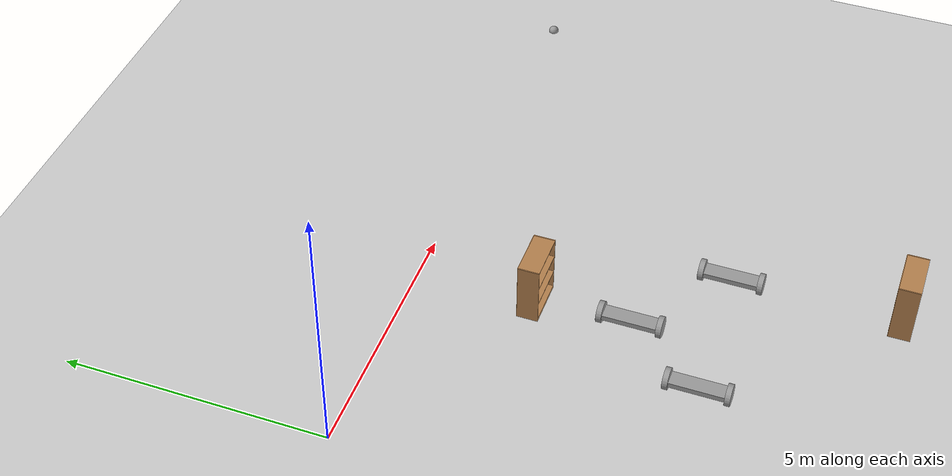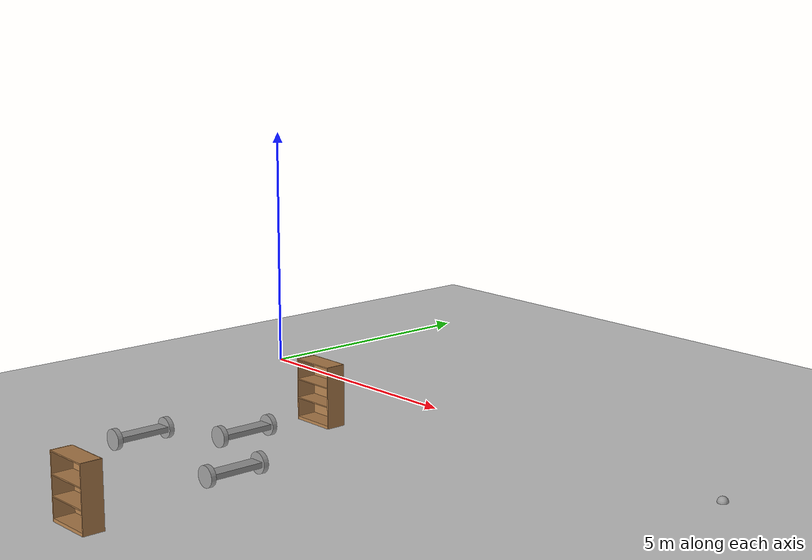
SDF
<sdf version="1.6">
 <world name="default">
  <model name="ground_plane">
   <static>1</static>
   <link name="link">
    <collision name="collision">
     <geometry><plane><normal>0 0 1</normal><size>100 100</size></plane></geometry>
     <surface><friction><ode><mu>100</mu><mu2>50</mu2></ode></friction></surface>
    </collision>
    <visual name="visual">
     <cast_shadows>0</cast_shadows>
     <geometry><plane><normal>0 0 1</normal><size>100 100</size></plane></geometry>
     <material>
      <script><uri>file://media/materials/scripts/gazebo.material</uri><name>Gazebo/Grey</name></script>
     </material>
    </visual>
   </link>
  </model>
  <model name="2wlrobot">
   <link name="link_1">
    <pose>-3e-06 2e-06 0 0 -0 0</pose>
    <inertial>
     <mass>1</mass>
     <inertia>
      <ixx>0.166667</ixx>
      <ixy>0</ixy>
      <ixz>0</ixz>
      <iyy>0.166667</iyy>
      <iyz>0</iyz>
      <izz>0.166667</izz>
     </inertia>
    </inertial>
    <visual name="visual">
     <geometry><box><size>0.3 1 0.1</size></box></geometry>
     <material>
      <lighting>1</lighting>
      <script><uri>file://media/materials/scripts/gazebo.material</uri><name>Gazebo/Grey</name></script>
      <ambient>0.3 0.3 0.3 1</ambient>
      <diffuse>0.7 0.7 0.7 1</diffuse>
      <specular>0.01 0.01 0.01 1</specular>
      <emissive>0 0 0 1</emissive>
      <shader type="vertex"><normal_map>__default__</normal_map></shader>
     </material>
    </visual>
    <collision name="collision">
     <geometry><box><size>0.3 1 0.1</size></box></geometry>
     <surface>
      <friction>
       <ode><mu>1</mu><mu2>1</mu2><fdir1>0 0 0</fdir1><slip1>0</slip1><slip2>0</slip2></ode>
       <torsional>
        <coefficient>1</coefficient>
        <patch_radius>0</patch_radius>
        <surface_radius>0</surface_radius>
        <use_patch_radius>1</use_patch_radius>
        <ode><slip>0</slip></ode>
       </torsional>
      </friction>
      <bounce><restitution_coefficient>0</restitution_coefficient><threshold>1e+06</threshold></bounce>
      <contact>
       <collide_without_contact>0</collide_without_contact>
       <collide_without_contact_bitmask>1</collide_without_contact_bitmask>
       <collide_bitmask>1</collide_bitmask>
       <ode>
        <soft_cfm>0</soft_cfm>
        <soft_erp>0.2</soft_erp>
        <kp>1e+13</kp>
        <kd>1</kd>
        <max_vel>0.01</max_vel>
        <min_depth>0</min_depth>
       </ode>
       <bullet>
        <split_impulse>1</split_impulse>
        <split_impulse_penetration_threshold>-0.01</split_impulse_penetration_threshold>
        <soft_cfm>0</soft_cfm>
        <soft_erp>0.2</soft_erp>
        <kp>1e+13</kp>
        <kd>1</kd>
       </bullet>
      </contact>
     </surface>
    </collision>
   </link>
   <link name="link_2">
    <pose>-3e-06 -0.550157 0 1.57 -0 0</pose>
    <inertial>
     <mass>1</mass>
     <inertia><ixx>0.145833</ixx><ixy>0</ixy><ixz>0</ixz><iyy>0.145833</iyy><iyz>0</iyz><izz>0.125</izz></inertia>
     <pose>0 0 0.2 1.57 -0 0</pose>
    </inertial>
    <visual name="visual">
     <geometry><cylinder><radius>0.2</radius><length>0.1</length></cylinder></geometry>
     <material>
      <lighting>1</lighting>
      <script><uri>file://media/materials/scripts/gazebo.material</uri><name>Gazebo/Grey</name></script>
      <ambient>0.3 0.3 0.3 1</ambient>
      <diffuse>0.7 0.7 0.7 1</diffuse>
      <specular>0.01 0.01 0.01 1</specular>
      <emissive>0 0 0 1</emissive>
      <shader type="vertex"><normal_map>__default__</normal_map></shader>
     </material>
    </visual>
    <collision name="collision">
     <geometry><cylinder><radius>0.2</radius><length>0.1</length></cylinder></geometry>
     <surface>
      <friction>
       <ode><mu>1</mu><mu2>1</mu2><fdir1>0 0 0</fdir1><slip1>0</slip1><slip2>0</slip2></ode>
       <torsional>
        <coefficient>1</coefficient>
        <patch_radius>0</patch_radius>
        <surface_radius>0</surface_radius>
        <use_patch_radius>1</use_patch_radius>
        <ode><slip>0</slip></ode>
       </torsional>
      </friction>
      <bounce><restitution_coefficient>0</restitution_coefficient><threshold>1e+06</threshold></bounce>
      <contact>
       <collide_without_contact>0</collide_without_contact>
       <collide_without_contact_bitmask>1</collide_without_contact_bitmask>
       <collide_bitmask>1</collide_bitmask>
       <ode>
        <soft_cfm>0</soft_cfm>
        <soft_erp>0.2</soft_erp>
        <kp>1e+13</kp>
        <kd>1</kd>
        <max_vel>0.01</max_vel>
        <min_depth>0</min_depth>
       </ode>
       <bullet>
        <split_impulse>1</split_impulse>
        <split_impulse_penetration_threshold>-0.01</split_impulse_penetration_threshold>
        <soft_cfm>0</soft_cfm>
        <soft_erp>0.2</soft_erp>
        <kp>1e+13</kp>
        <kd>1</kd>
       </bullet>
      </contact>
     </surface>
    </collision>
   </link>
   <link name="link_2_clone">
    <pose>-3e-06 0.550162 0 1.57 -0 0</pose>
    <inertial>
     <mass>1</mass>
     <inertia><ixx>0.145833</ixx><ixy>0</ixy><ixz>0</ixz><iyy>0.145833</iyy><iyz>0</iyz><izz>0.125</izz></inertia>
     <pose>0 0 0.2 1.57 -0 0</pose>
    </inertial>
    <visual name="visual">
     <geometry><cylinder><radius>0.2</radius><length>0.1</length></cylinder></geometry>
     <material>
      <lighting>1</lighting>
      <script><uri>file://media/materials/scripts/gazebo.material</uri><name>Gazebo/Grey</name></script>
      <ambient>0.3 0.3 0.3 1</ambient>
      <diffuse>0.7 0.7 0.7 1</diffuse>
      <specular>0.01 0.01 0.01 1</specular>
      <emissive>0 0 0 1</emissive>
      <shader type="vertex"><normal_map>__default__</normal_map></shader>
     </material>
    </visual>
    <collision name="collision">
     <geometry><cylinder><radius>0.2</radius><length>0.1</length></cylinder></geometry>
     <surface>
      <friction>
       <ode><mu>1</mu><mu2>1</mu2><fdir1>0 0 0</fdir1><slip1>0</slip1><slip2>0</slip2></ode>
       <torsional>
        <coefficient>1</coefficient>
        <patch_radius>0</patch_radius>
        <surface_radius>0</surface_radius>
        <use_patch_radius>1</use_patch_radius>
        <ode><slip>0</slip></ode>
       </torsional>
      </friction>
      <bounce><restitution_coefficient>0</restitution_coefficient><threshold>1e+06</threshold></bounce>
      <contact>
       <collide_without_contact>0</collide_without_contact>
       <collide_without_contact_bitmask>1</collide_without_contact_bitmask>
       <collide_bitmask>1</collide_bitmask>
       <ode>
        <soft_cfm>0</soft_cfm>
        <soft_erp>0.2</soft_erp>
        <kp>1e+13</kp>
        <kd>1</kd>
        <max_vel>0.01</max_vel>
        <min_depth>0</min_depth>
       </ode>
       <bullet>
        <split_impulse>1</split_impulse>
        <split_impulse_penetration_threshold>-0.01</split_impulse_penetration_threshold>
        <soft_cfm>0</soft_cfm>
        <soft_erp>0.2</soft_erp>
        <kp>1e+13</kp>
        <kd>1</kd>
       </bullet>
      </contact>
     </surface>
    </collision>
   </link>
   <joint name="link_1_JOINT_0" type="revolute">
    <parent>link_1</parent>
    <child>link_2</child>
    <axis>
     <xyz>0 0 1</xyz>
     <use_parent_model_frame>0</use_parent_model_frame>
     <limit>
      <lower>-1.79769e+308</lower>
      <upper>1.79769e+308</upper>
      <effort>-1</effort>
      <velocity>-1</velocity>
     </limit>
     <dynamics>
      <spring_reference>0</spring_reference>
      <spring_stiffness>0</spring_stiffness>
      <damping>0</damping>
     </dynamics>
    </axis>
    <physics>
     <ode><limit><cfm>0</cfm><erp>0.2</erp></limit><suspension><cfm>0</cfm><erp>0.2</erp></suspension></ode>
    </physics>
   </joint>
   <joint name="link_1_JOINT_1" type="revolute">
    <parent>link_1</parent>
    <child>link_2_clone</child>
    <axis>
     <xyz>0 0 1</xyz>
     <use_parent_model_frame>0</use_parent_model_frame>
     <limit>
      <lower>-1.79769e+308</lower>
      <upper>1.79769e+308</upper>
      <effort>-1</effort>
      <velocity>-1</velocity>
     </limit>
     <dynamics>
      <spring_reference>0</spring_reference>
      <spring_stiffness>0</spring_stiffness>
      <damping>0</damping>
     </dynamics>
    </axis>
    <physics>
     <ode><limit><cfm>0</cfm><erp>0.2</erp></limit><suspension><cfm>0</cfm><erp>0.2</erp></suspension></ode>
    </physics>
   </joint>
   <static>0</static>
   <pose>5.85656 -5.48243 0.200037 4e-06 -0 0</pose>
  </model>
  <model name="2wlrobot_clone">
   <link name="link_1">
    <pose>-3e-06 2e-06 0 0 -0 0</pose>
    <inertial>
     <mass>1</mass>
     <inertia>
      <ixx>0.166667</ixx>
      <ixy>0</ixy>
      <ixz>0</ixz>
      <iyy>0.166667</iyy>
      <iyz>0</iyz>
      <izz>0.166667</izz>
     </inertia>
    </inertial>
    <visual name="visual">
     <geometry><box><size>0.3 1 0.1</size></box></geometry>
     <material>
      <lighting>1</lighting>
      <script><uri>file://media/materials/scripts/gazebo.material</uri><name>Gazebo/Grey</name></script>
      <ambient>0.3 0.3 0.3 1</ambient>
      <diffuse>0.7 0.7 0.7 1</diffuse>
      <specular>0.01 0.01 0.01 1</specular>
      <emissive>0 0 0 1</emissive>
      <shader type="vertex"><normal_map>__default__</normal_map></shader>
     </material>
    </visual>
    <collision name="collision">
     <geometry><box><size>0.3 1 0.1</size></box></geometry>
     <surface>
      <friction>
       <ode><mu>1</mu><mu2>1</mu2><fdir1>0 0 0</fdir1><slip1>0</slip1><slip2>0</slip2></ode>
       <torsional>
        <coefficient>1</coefficient>
        <patch_radius>0</patch_radius>
        <surface_radius>0</surface_radius>
        <use_patch_radius>1</use_patch_radius>
        <ode><slip>0</slip></ode>
       </torsional>
      </friction>
      <bounce><restitution_coefficient>0</restitution_coefficient><threshold>1e+06</threshold></bounce>
      <contact>
       <collide_without_contact>0</collide_without_contact>
       <collide_without_contact_bitmask>1</collide_without_contact_bitmask>
       <collide_bitmask>1</collide_bitmask>
       <ode>
        <soft_cfm>0</soft_cfm>
        <soft_erp>0.2</soft_erp>
        <kp>1e+13</kp>
        <kd>1</kd>
        <max_vel>0.01</max_vel>
        <min_depth>0</min_depth>
       </ode>
       <bullet>
        <split_impulse>1</split_impulse>
        <split_impulse_penetration_threshold>-0.01</split_impulse_penetration_threshold>
        <soft_cfm>0</soft_cfm>
        <soft_erp>0.2</soft_erp>
        <kp>1e+13</kp>
        <kd>1</kd>
       </bullet>
      </contact>
     </surface>
    </collision>
   </link>
   <link name="link_2">
    <pose>-3e-06 -0.550157 0 1.57 -0 0</pose>
    <inertial>
     <mass>1</mass>
     <inertia><ixx>0.145833</ixx><ixy>0</ixy><ixz>0</ixz><iyy>0.145833</iyy><iyz>0</iyz><izz>0.125</izz></inertia>
     <pose>0 0 0.2 1.57 -0 0</pose>
    </inertial>
    <visual name="visual">
     <geometry><cylinder><radius>0.2</radius><length>0.1</length></cylinder></geometry>
     <material>
      <lighting>1</lighting>
      <script><uri>file://media/materials/scripts/gazebo.material</uri><name>Gazebo/Grey</name></script>
      <ambient>0.3 0.3 0.3 1</ambient>
      <diffuse>0.7 0.7 0.7 1</diffuse>
      <specular>0.01 0.01 0.01 1</specular>
      <emissive>0 0 0 1</emissive>
      <shader type="vertex"><normal_map>__default__</normal_map></shader>
     </material>
    </visual>
    <collision name="collision">
     <geometry><cylinder><radius>0.2</radius><length>0.1</length></cylinder></geometry>
     <surface>
      <friction>
       <ode><mu>1</mu><mu2>1</mu2><fdir1>0 0 0</fdir1><slip1>0</slip1><slip2>0</slip2></ode>
       <torsional>
        <coefficient>1</coefficient>
        <patch_radius>0</patch_radius>
        <surface_radius>0</surface_radius>
        <use_patch_radius>1</use_patch_radius>
        <ode><slip>0</slip></ode>
       </torsional>
      </friction>
      <bounce><restitution_coefficient>0</restitution_coefficient><threshold>1e+06</threshold></bounce>
      <contact>
       <collide_without_contact>0</collide_without_contact>
       <collide_without_contact_bitmask>1</collide_without_contact_bitmask>
       <collide_bitmask>1</collide_bitmask>
       <ode>
        <soft_cfm>0</soft_cfm>
        <soft_erp>0.2</soft_erp>
        <kp>1e+13</kp>
        <kd>1</kd>
        <max_vel>0.01</max_vel>
        <min_depth>0</min_depth>
       </ode>
       <bullet>
        <split_impulse>1</split_impulse>
        <split_impulse_penetration_threshold>-0.01</split_impulse_penetration_threshold>
        <soft_cfm>0</soft_cfm>
        <soft_erp>0.2</soft_erp>
        <kp>1e+13</kp>
        <kd>1</kd>
       </bullet>
      </contact>
     </surface>
    </collision>
   </link>
   <link name="link_2_clone">
    <pose>-3e-06 0.550162 0 1.57 -0 0</pose>
    <inertial>
     <mass>1</mass>
     <inertia><ixx>0.145833</ixx><ixy>0</ixy><ixz>0</ixz><iyy>0.145833</iyy><iyz>0</iyz><izz>0.125</izz></inertia>
     <pose>0 0 0.2 1.57 -0 0</pose>
    </inertial>
    <visual name="visual">
     <geometry><cylinder><radius>0.2</radius><length>0.1</length></cylinder></geometry>
     <material>
      <lighting>1</lighting>
      <script><uri>file://media/materials/scripts/gazebo.material</uri><name>Gazebo/Grey</name></script>
      <ambient>0.3 0.3 0.3 1</ambient>
      <diffuse>0.7 0.7 0.7 1</diffuse>
      <specular>0.01 0.01 0.01 1</specular>
      <emissive>0 0 0 1</emissive>
      <shader type="vertex"><normal_map>__default__</normal_map></shader>
     </material>
    </visual>
    <collision name="collision">
     <geometry><cylinder><radius>0.2</radius><length>0.1</length></cylinder></geometry>
     <surface>
      <friction>
       <ode><mu>1</mu><mu2>1</mu2><fdir1>0 0 0</fdir1><slip1>0</slip1><slip2>0</slip2></ode>
       <torsional>
        <coefficient>1</coefficient>
        <patch_radius>0</patch_radius>
        <surface_radius>0</surface_radius>
        <use_patch_radius>1</use_patch_radius>
        <ode><slip>0</slip></ode>
       </torsional>
      </friction>
      <bounce><restitution_coefficient>0</restitution_coefficient><threshold>1e+06</threshold></bounce>
      <contact>
       <collide_without_contact>0</collide_without_contact>
       <collide_without_contact_bitmask>1</collide_without_contact_bitmask>
       <collide_bitmask>1</collide_bitmask>
       <ode>
        <soft_cfm>0</soft_cfm>
        <soft_erp>0.2</soft_erp>
        <kp>1e+13</kp>
        <kd>1</kd>
        <max_vel>0.01</max_vel>
        <min_depth>0</min_depth>
       </ode>
       <bullet>
        <split_impulse>1</split_impulse>
        <split_impulse_penetration_threshold>-0.01</split_impulse_penetration_threshold>
        <soft_cfm>0</soft_cfm>
        <soft_erp>0.2</soft_erp>
        <kp>1e+13</kp>
        <kd>1</kd>
       </bullet>
      </contact>
     </surface>
    </collision>
   </link>
   <joint name="link_1_JOINT_0" type="revolute">
    <parent>link_1</parent>
    <child>link_2</child>
    <axis>
     <xyz>0 0 1</xyz>
     <use_parent_model_frame>0</use_parent_model_frame>
     <limit>
      <lower>-1.79769e+308</lower>
      <upper>1.79769e+308</upper>
      <effort>-1</effort>
      <velocity>-1</velocity>
     </limit>
     <dynamics>
      <spring_reference>0</spring_reference>
      <spring_stiffness>0</spring_stiffness>
      <damping>0</damping>
     </dynamics>
    </axis>
    <physics>
     <ode><limit><cfm>0</cfm><erp>0.2</erp></limit><suspension><cfm>0</cfm><erp>0.2</erp></suspension></ode>
    </physics>
   </joint>
   <joint name="link_1_JOINT_1" type="revolute">
    <parent>link_1</parent>
    <child>link_2_clone</child>
    <axis>
     <xyz>0 0 1</xyz>
     <use_parent_model_frame>0</use_parent_model_frame>
     <limit>
      <lower>-1.79769e+308</lower>
      <upper>1.79769e+308</upper>
      <effort>-1</effort>
      <velocity>-1</velocity>
     </limit>
     <dynamics>
      <spring_reference>0</spring_reference>
      <spring_stiffness>0</spring_stiffness>
      <damping>0</damping>
     </dynamics>
    </axis>
    <physics>
     <ode><limit><cfm>0</cfm><erp>0.2</erp></limit><suspension><cfm>0</cfm><erp>0.2</erp></suspension></ode>
    </physics>
   </joint>
   <static>0</static>
   <pose>3.0758 -5.57549 0.200037 4e-06 -0 0</pose>
  </model>
  <model name="bookshelf">
   <static>1</static>
   <link name="link">
    <inertial><mass>1</mass></inertial>
    <collision name="back">
     <pose>0 0.005 0.6 0 -0 0</pose>
     <geometry><box><size>0.9 0.01 1.2</size></box></geometry>
    </collision>
    <visual name="visual1">
     <pose>0 0.005 0.6 0 -0 0</pose>
     <geometry><box><size>0.9 0.01 1.2</size></box></geometry>
     <material>
      <script><uri>file://media/materials/scripts/gazebo.material</uri><name>Gazebo/Wood</name></script>
     </material>
    </visual>
    <collision name="left_side">
     <pose>0.45 -0.195 0.6 0 -0 0</pose>
     <geometry><box><size>0.02 0.4 1.2</size></box></geometry>
    </collision>
    <visual name="visual2">
     <pose>0.45 -0.195 0.6 0 -0 0</pose>
     <geometry><box><size>0.02 0.4 1.2</size></box></geometry>
     <material>
      <script><uri>file://media/materials/scripts/gazebo.material</uri><name>Gazebo/Wood</name></script>
     </material>
    </visual>
    <collision name="right_side">
     <pose>-0.45 -0.195 0.6 0 -0 0</pose>
     <geometry><box><size>0.02 0.4 1.2</size></box></geometry>
    </collision>
    <visual name="visual3">
     <pose>-0.45 -0.195 0.6 0 -0 0</pose>
     <geometry><box><size>0.02 0.4 1.2</size></box></geometry>
     <material>
      <script><uri>file://media/materials/scripts/gazebo.material</uri><name>Gazebo/Wood</name></script>
     </material>
    </visual>
    <collision name="bottom">
     <pose>0 -0.195 0.03 0 -0 0</pose>
     <geometry><box><size>0.88 0.4 0.06</size></box></geometry>
    </collision>
    <visual name="visual4">
     <pose>0 -0.195 0.03 0 -0 0</pose>
     <geometry><box><size>0.88 0.4 0.06</size></box></geometry>
     <material>
      <script><uri>file://media/materials/scripts/gazebo.material</uri><name>Gazebo/Wood</name></script>
     </material>
    </visual>
    <collision name="top">
     <pose>0 -0.195 1.19 0 -0 0</pose>
     <geometry><box><size>0.88 0.4 0.02</size></box></geometry>
    </collision>
    <visual name="visual5">
     <pose>0 -0.195 1.19 0 -0 0</pose>
     <geometry><box><size>0.88 0.4 0.02</size></box></geometry>
     <material>
      <script><uri>file://media/materials/scripts/gazebo.material</uri><name>Gazebo/Wood</name></script>
     </material>
    </visual>
    <collision name="low_shelf">
     <pose>0 -0.195 0.43 0 -0 0</pose>
     <geometry><box><size>0.88 0.4 0.02</size></box></geometry>
    </collision>
    <visual name="visual6">
     <pose>0 -0.195 0.43 0 -0 0</pose>
     <geometry><box><size>0.88 0.4 0.02</size></box></geometry>
     <material>
      <script><uri>file://media/materials/scripts/gazebo.material</uri><name>Gazebo/Wood</name></script>
     </material>
    </visual>
    <collision name="high_shelf">
     <pose>0 -0.195 0.8 0 -0 0</pose>
     <geometry><box><size>0.88 0.4 0.02</size></box></geometry>
    </collision>
    <visual name="visual7">
     <pose>0 -0.195 0.8 0 -0 0</pose>
     <geometry><box><size>0.88 0.4 0.02</size></box></geometry>
     <material>
      <script><uri>file://media/materials/scripts/gazebo.material</uri><name>Gazebo/Wood</name></script>
     </material>
    </visual>
   </link>
   <pose>6.0195 -8.41915 0 0 -0 0</pose>
  </model>
  <model name="bookshelf_clone_0">
   <static>1</static>
   <link name="link">
    <inertial><mass>1</mass></inertial>
    <collision name="back">
     <pose>0 0.005 0.6 0 -0 0</pose>
     <geometry><box><size>0.9 0.01 1.2</size></box></geometry>
    </collision>
    <visual name="visual1">
     <pose>0 0.005 0.6 0 -0 0</pose>
     <geometry><box><size>0.9 0.01 1.2</size></box></geometry>
     <material>
      <script><uri>file://media/materials/scripts/gazebo.material</uri><name>Gazebo/Wood</name></script>
     </material>
    </visual>
    <collision name="left_side">
     <pose>0.45 -0.195 0.6 0 -0 0</pose>
     <geometry><box><size>0.02 0.4 1.2</size></box></geometry>
    </collision>
    <visual name="visual2">
     <pose>0.45 -0.195 0.6 0 -0 0</pose>
     <geometry><box><size>0.02 0.4 1.2</size></box></geometry>
     <material>
      <script><uri>file://media/materials/scripts/gazebo.material</uri><name>Gazebo/Wood</name></script>
     </material>
    </visual>
    <collision name="right_side">
     <pose>-0.45 -0.195 0.6 0 -0 0</pose>
     <geometry><box><size>0.02 0.4 1.2</size></box></geometry>
    </collision>
    <visual name="visual3">
     <pose>-0.45 -0.195 0.6 0 -0 0</pose>
     <geometry><box><size>0.02 0.4 1.2</size></box></geometry>
     <material>
      <script><uri>file://media/materials/scripts/gazebo.material</uri><name>Gazebo/Wood</name></script>
     </material>
    </visual>
    <collision name="bottom">
     <pose>0 -0.195 0.03 0 -0 0</pose>
     <geometry><box><size>0.88 0.4 0.06</size></box></geometry>
    </collision>
    <visual name="visual4">
     <pose>0 -0.195 0.03 0 -0 0</pose>
     <geometry><box><size>0.88 0.4 0.06</size></box></geometry>
     <material>
      <script><uri>file://media/materials/scripts/gazebo.material</uri><name>Gazebo/Wood</name></script>
     </material>
    </visual>
    <collision name="top">
     <pose>0 -0.195 1.19 0 -0 0</pose>
     <geometry><box><size>0.88 0.4 0.02</size></box></geometry>
    </collision>
    <visual name="visual5">
     <pose>0 -0.195 1.19 0 -0 0</pose>
     <geometry><box><size>0.88 0.4 0.02</size></box></geometry>
     <material>
      <script><uri>file://media/materials/scripts/gazebo.material</uri><name>Gazebo/Wood</name></script>
     </material>
    </visual>
    <collision name="low_shelf">
     <pose>0 -0.195 0.43 0 -0 0</pose>
     <geometry><box><size>0.88 0.4 0.02</size></box></geometry>
    </collision>
    <visual name="visual6">
     <pose>0 -0.195 0.43 0 -0 0</pose>
     <geometry><box><size>0.88 0.4 0.02</size></box></geometry>
     <material>
      <script><uri>file://media/materials/scripts/gazebo.material</uri><name>Gazebo/Wood</name></script>
     </material>
    </visual>
    <collision name="high_shelf">
     <pose>0 -0.195 0.8 0 -0 0</pose>
     <geometry><box><size>0.88 0.4 0.02</size></box></geometry>
    </collision>
    <visual name="visual7">
     <pose>0 -0.195 0.8 0 -0 0</pose>
     <geometry><box><size>0.88 0.4 0.02</size></box></geometry>
     <material>
      <script><uri>file://media/materials/scripts/gazebo.material</uri><name>Gazebo/Wood</name></script>
     </material>
    </visual>
   </link>
   <pose>4.21048 -2.05507 0 0 -0 0</pose>
  </model>
  <model name="2wlrobot_clone_0">
   <link name="link_1">
    <pose>-3e-06 2e-06 0 0 -0 0</pose>
    <inertial>
     <mass>1</mass>
     <inertia>
      <ixx>0.166667</ixx>
      <ixy>0</ixy>
      <ixz>0</ixz>
      <iyy>0.166667</iyy>
      <iyz>0</iyz>
      <izz>0.166667</izz>
     </inertia>
    </inertial>
    <visual name="visual">
     <geometry><box><size>0.3 1 0.1</size></box></geometry>
     <material>
      <lighting>1</lighting>
      <script><uri>file://media/materials/scripts/gazebo.material</uri><name>Gazebo/Grey</name></script>
      <ambient>0.3 0.3 0.3 1</ambient>
      <diffuse>0.7 0.7 0.7 1</diffuse>
      <specular>0.01 0.01 0.01 1</specular>
      <emissive>0 0 0 1</emissive>
      <shader type="vertex"><normal_map>__default__</normal_map></shader>
     </material>
    </visual>
    <collision name="collision">
     <geometry><box><size>0.3 1 0.1</size></box></geometry>
     <surface>
      <friction>
       <ode><mu>1</mu><mu2>1</mu2><fdir1>0 0 0</fdir1><slip1>0</slip1><slip2>0</slip2></ode>
       <torsional>
        <coefficient>1</coefficient>
        <patch_radius>0</patch_radius>
        <surface_radius>0</surface_radius>
        <use_patch_radius>1</use_patch_radius>
        <ode><slip>0</slip></ode>
       </torsional>
      </friction>
      <bounce><restitution_coefficient>0</restitution_coefficient><threshold>1e+06</threshold></bounce>
      <contact>
       <collide_without_contact>0</collide_without_contact>
       <collide_without_contact_bitmask>1</collide_without_contact_bitmask>
       <collide_bitmask>1</collide_bitmask>
       <ode>
        <soft_cfm>0</soft_cfm>
        <soft_erp>0.2</soft_erp>
        <kp>1e+13</kp>
        <kd>1</kd>
        <max_vel>0.01</max_vel>
        <min_depth>0</min_depth>
       </ode>
       <bullet>
        <split_impulse>1</split_impulse>
        <split_impulse_penetration_threshold>-0.01</split_impulse_penetration_threshold>
        <soft_cfm>0</soft_cfm>
        <soft_erp>0.2</soft_erp>
        <kp>1e+13</kp>
        <kd>1</kd>
       </bullet>
      </contact>
     </surface>
    </collision>
   </link>
   <link name="link_2">
    <pose>-3e-06 -0.550157 0 1.57 -0 0</pose>
    <inertial>
     <mass>1</mass>
     <inertia><ixx>0.145833</ixx><ixy>0</ixy><ixz>0</ixz><iyy>0.145833</iyy><iyz>0</iyz><izz>0.125</izz></inertia>
     <pose>0 0 0.2 1.57 -0 0</pose>
    </inertial>
    <visual name="visual">
     <geometry><cylinder><radius>0.2</radius><length>0.1</length></cylinder></geometry>
     <material>
      <lighting>1</lighting>
      <script><uri>file://media/materials/scripts/gazebo.material</uri><name>Gazebo/Grey</name></script>
      <ambient>0.3 0.3 0.3 1</ambient>
      <diffuse>0.7 0.7 0.7 1</diffuse>
      <specular>0.01 0.01 0.01 1</specular>
      <emissive>0 0 0 1</emissive>
      <shader type="vertex"><normal_map>__default__</normal_map></shader>
     </material>
    </visual>
    <collision name="collision">
     <geometry><cylinder><radius>0.2</radius><length>0.1</length></cylinder></geometry>
     <surface>
      <friction>
       <ode><mu>1</mu><mu2>1</mu2><fdir1>0 0 0</fdir1><slip1>0</slip1><slip2>0</slip2></ode>
       <torsional>
        <coefficient>1</coefficient>
        <patch_radius>0</patch_radius>
        <surface_radius>0</surface_radius>
        <use_patch_radius>1</use_patch_radius>
        <ode><slip>0</slip></ode>
       </torsional>
      </friction>
      <bounce><restitution_coefficient>0</restitution_coefficient><threshold>1e+06</threshold></bounce>
      <contact>
       <collide_without_contact>0</collide_without_contact>
       <collide_without_contact_bitmask>1</collide_without_contact_bitmask>
       <collide_bitmask>1</collide_bitmask>
       <ode>
        <soft_cfm>0</soft_cfm>
        <soft_erp>0.2</soft_erp>
        <kp>1e+13</kp>
        <kd>1</kd>
        <max_vel>0.01</max_vel>
        <min_depth>0</min_depth>
       </ode>
       <bullet>
        <split_impulse>1</split_impulse>
        <split_impulse_penetration_threshold>-0.01</split_impulse_penetration_threshold>
        <soft_cfm>0</soft_cfm>
        <soft_erp>0.2</soft_erp>
        <kp>1e+13</kp>
        <kd>1</kd>
       </bullet>
      </contact>
     </surface>
    </collision>
   </link>
   <link name="link_2_clone">
    <pose>-3e-06 0.550162 0 1.57 -0 0</pose>
    <inertial>
     <mass>1</mass>
     <inertia><ixx>0.145833</ixx><ixy>0</ixy><ixz>0</ixz><iyy>0.145833</iyy><iyz>0</iyz><izz>0.125</izz></inertia>
     <pose>0 0 0.2 1.57 -0 0</pose>
    </inertial>
    <visual name="visual">
     <geometry><cylinder><radius>0.2</radius><length>0.1</length></cylinder></geometry>
     <material>
      <lighting>1</lighting>
      <script><uri>file://media/materials/scripts/gazebo.material</uri><name>Gazebo/Grey</name></script>
      <ambient>0.3 0.3 0.3 1</ambient>
      <diffuse>0.7 0.7 0.7 1</diffuse>
      <specular>0.01 0.01 0.01 1</specular>
      <emissive>0 0 0 1</emissive>
      <shader type="vertex"><normal_map>__default__</normal_map></shader>
     </material>
    </visual>
    <collision name="collision">
     <geometry><cylinder><radius>0.2</radius><length>0.1</length></cylinder></geometry>
     <surface>
      <friction>
       <ode><mu>1</mu><mu2>1</mu2><fdir1>0 0 0</fdir1><slip1>0</slip1><slip2>0</slip2></ode>
       <torsional>
        <coefficient>1</coefficient>
        <patch_radius>0</patch_radius>
        <surface_radius>0</surface_radius>
        <use_patch_radius>1</use_patch_radius>
        <ode><slip>0</slip></ode>
       </torsional>
      </friction>
      <bounce><restitution_coefficient>0</restitution_coefficient><threshold>1e+06</threshold></bounce>
      <contact>
       <collide_without_contact>0</collide_without_contact>
       <collide_without_contact_bitmask>1</collide_without_contact_bitmask>
       <collide_bitmask>1</collide_bitmask>
       <ode>
        <soft_cfm>0</soft_cfm>
        <soft_erp>0.2</soft_erp>
        <kp>1e+13</kp>
        <kd>1</kd>
        <max_vel>0.01</max_vel>
        <min_depth>0</min_depth>
       </ode>
       <bullet>
        <split_impulse>1</split_impulse>
        <split_impulse_penetration_threshold>-0.01</split_impulse_penetration_threshold>
        <soft_cfm>0</soft_cfm>
        <soft_erp>0.2</soft_erp>
        <kp>1e+13</kp>
        <kd>1</kd>
       </bullet>
      </contact>
     </surface>
    </collision>
   </link>
   <joint name="link_1_JOINT_0" type="revolute">
    <parent>link_1</parent>
    <child>link_2</child>
    <axis>
     <xyz>0 0 1</xyz>
     <use_parent_model_frame>0</use_parent_model_frame>
     <limit>
      <lower>-1.79769e+308</lower>
      <upper>1.79769e+308</upper>
      <effort>-1</effort>
      <velocity>-1</velocity>
     </limit>
     <dynamics>
      <spring_reference>0</spring_reference>
      <spring_stiffness>0</spring_stiffness>
      <damping>0</damping>
     </dynamics>
    </axis>
    <physics>
     <ode><limit><cfm>0</cfm><erp>0.2</erp></limit><suspension><cfm>0</cfm><erp>0.2</erp></suspension></ode>
    </physics>
   </joint>
   <joint name="link_1_JOINT_1" type="revolute">
    <parent>link_1</parent>
    <child>link_2_clone</child>
    <axis>
     <xyz>0 0 1</xyz>
     <use_parent_model_frame>0</use_parent_model_frame>
     <limit>
      <lower>-1.79769e+308</lower>
      <upper>1.79769e+308</upper>
      <effort>-1</effort>
      <velocity>-1</velocity>
     </limit>
     <dynamics>
      <spring_reference>0</spring_reference>
      <spring_stiffness>0</spring_stiffness>
      <damping>0</damping>
     </dynamics>
    </axis>
    <physics>
     <ode><limit><cfm>0</cfm><erp>0.2</erp></limit><suspension><cfm>0</cfm><erp>0.2</erp></suspension></ode>
    </physics>
   </joint>
   <static>0</static>
   <pose>4.20048 -4.04608 0.200037 4e-06 -0 0</pose>
  </model>
  <model name="my_ball_0">
   <link name="link_0">
    <inertial>
     <mass>1</mass>
     <inertia><ixx>0.1</ixx><ixy>0</ixy><ixz>0</ixz><iyy>0.1</iyy><iyz>0</iyz><izz>0.1</izz></inertia>
    </inertial>
    <visual name="visual">
     <geometry><sphere><radius>0.1</radius></sphere></geometry>
     <material>
      <lighting>1</lighting>
      <script><uri>file://media/materials/scripts/gazebo.material</uri><name>Gazebo/Grey</name></script>
      <ambient>1 1 1 1</ambient>
      <diffuse>1 1 1 1</diffuse>
      <specular>1 1 1 1</specular>
      <emissive>1 1 1 1</emissive>
      <shader type="vertex"><normal_map>__default__</normal_map></shader>
     </material>
    </visual>
    <collision name="collision">
     <geometry><sphere><radius>0.1</radius></sphere></geometry>
     <surface>
      <friction>
       <ode><mu>1</mu><mu2>1</mu2><fdir1>0 0 0</fdir1><slip1>0</slip1><slip2>0</slip2></ode>
       <torsional>
        <coefficient>1</coefficient>
        <patch_radius>0</patch_radius>
        <surface_radius>0</surface_radius>
        <use_patch_radius>1</use_patch_radius>
        <ode><slip>0</slip></ode>
       </torsional>
      </friction>
      <bounce><restitution_coefficient>0</restitution_coefficient><threshold>1e+06</threshold></bounce>
      <contact>
       <collide_without_contact>0</collide_without_contact>
       <collide_without_contact_bitmask>1</collide_without_contact_bitmask>
       <collide_bitmask>1</collide_bitmask>
       <ode>
        <soft_cfm>0</soft_cfm>
        <soft_erp>0.2</soft_erp>
        <kp>1e+13</kp>
        <kd>1</kd>
        <max_vel>0.01</max_vel>
        <min_depth>0</min_depth>
       </ode>
       <bullet>
        <split_impulse>1</split_impulse>
        <split_impulse_penetration_threshold>-0.01</split_impulse_penetration_threshold>
        <soft_cfm>0</soft_cfm>
        <soft_erp>0.2</soft_erp>
        <kp>1e+13</kp>
        <kd>1</kd>
       </bullet>
      </contact>
     </surface>
    </collision>
   </link>
   <static>0</static>
   <pose>12.0658 -0.037069 0 0 -0 0</pose>
  </model>
 </world>
</sdf>
